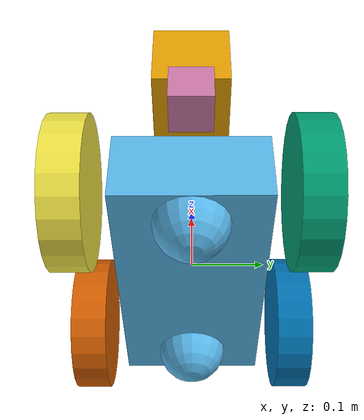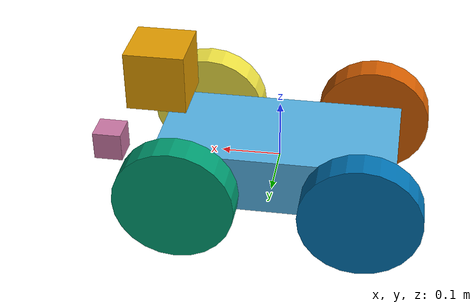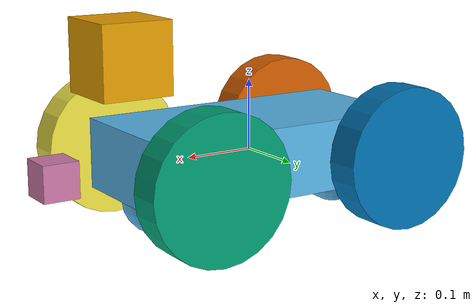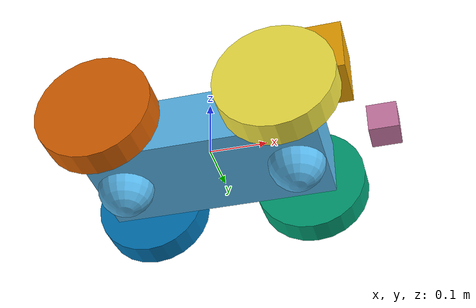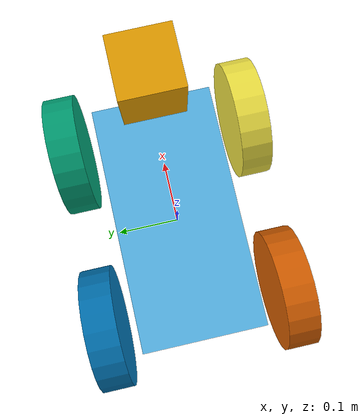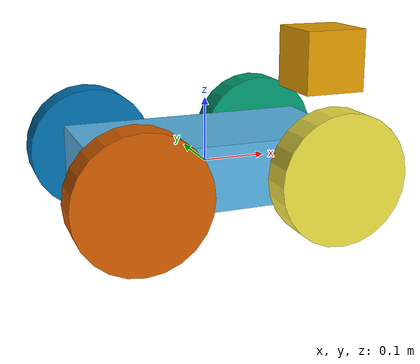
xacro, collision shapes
<?xml version='1.0'?>
<robot name="slam_bot_four_wheel"
  xmlns:xacro="http://www.ros.org/wiki/xacro">
  <xacro:include filename="$(find slam_project)/urdf/slam_bot.gazebo" />
  <link name="robot_footprint"></link>
  <joint name="robot_footprint_joint" type="fixed">
    <origin xyz="0 0 0" rpy="0 0 0" />
    <parent link="robot_footprint"/>
    <child link="chassis" />
  </joint>
  <link name='chassis'>
    <pose>0 0 0.1 0 0 0</pose>
    <inertial>
      <mass value="50.0"/>
      <origin xyz="0.0 0 0" rpy=" 0 0 0"/>
      <inertia ixx="0.1" ixy="0" ixz="0" iyy="0.1" iyz="0" izz="0.1" />
    </inertial>
    <collision name='collision'>
      <origin xyz="0 0 0" rpy=" 0 0 0"/>
      <geometry>
        <box size=".4 .2 .1"/>
      </geometry>
    </collision>
    <visual name='chassis_visual'>
      <origin xyz="0 0 0" rpy=" 0 0 0"/>
      <geometry>
        <box size=".4 .2 .1"/>
      </geometry>
    </visual>
    <collision name='back_caster_collision'>
      <origin xyz="-0.15 0 -0.05" rpy=" 0 0 0"/>
      <geometry>
        <sphere radius="0.049"/>
      </geometry>
      <surface>
        <friction>
          <ode>
            <mu>0.1</mu>
            <mu2>0.1</mu2>
            <slip1>0.</slip1>
            <slip2>0.</slip2>
          </ode>
        </friction>
      </surface>
    </collision>
    <visual name='back_caster_visual'>
      <origin xyz="-0.15 0 -0.05" rpy=" 0 0 0"/>
      <geometry>
        <sphere radius="0.05"/>
      </geometry>
    </visual>
    <collision name='front_caster_collision'>
      <origin xyz="0.15 0 -0.05" rpy=" 0 0 0"/>
      <geometry>
        <sphere radius="0.049"/>
      </geometry>
      <surface>
        <friction>
          <ode>
            <mu>0.1</mu>
            <mu2>0.1</mu2>
            <slip1>0.0</slip1>
            <slip2>0.0</slip2>

          </ode>
        </friction>
      </surface>
    </collision>
    <visual name='front_caster_visual'>
      <origin xyz="0.15 0.0 -0.05" rpy=" 0 0 0"/>
      <geometry>
        <sphere radius="0.05"/>
      </geometry>
    </visual>
  </link>
  <link name="front_left_wheel">
    <inertial>
      <origin xyz="0.0 0.0 0.0" rpy="0.0 1.5707 1.5707" />
      <mass value="5.0"/>
      <inertia ixx="0.1" ixy="0" ixz="0" iyy="0.1" iyz="0" izz="0.1" />
    </inertial>
    <collision name='collision'>
      <origin xyz="0.0 0.0 0.0" rpy=" 0 1.5707 1.5707"/>
      <geometry>
        <cylinder radius="0.1" length="0.05"/>
      </geometry>
    </collision>
    <visual name="lef_wheel_visual">
      <origin xyz="0.0 0.0 0.0" rpy="0 1.5707 1.5707" />
      <geometry>
        <cylinder radius="0.1" length="0.05"/>
      </geometry>
    </visual>
  </link>
  <joint type="continuous" name="front_left_wheel_hinge">
    <origin xyz="0.15 0.15 0.0" rpy="0 0 0"/>
    <child link="front_left_wheel"/>
    <parent link="chassis"/>
    <axis xyz="0 1 0" rpy="0 0 0"/>
    <limit effort="10000" velocity="1000"/>
    <!-- increased damping to reduce the osscilations when robot stops getting acceleration -->
    <joint_properties damping="10.0" friction="1.0"/>
  </joint>
  <link name="front_right_wheel">
    <inertial>
      <origin xyz="0.0 0.0 0.0" rpy="0.0 1.5707 1.5707" />
      <mass value="5.0"/>
      <inertia ixx="0.1" ixy="0" ixz="0" iyy="0.1" iyz="0" izz="0.1" />
    </inertial>
    <collision name='collision'>
      <origin xyz="0.0 0.0 0.0" rpy=" 0 1.5707 1.5707"/>
      <geometry>
        <cylinder radius="0.1" length="0.05"/>
      </geometry>
    </collision>
    <visual name="right_wheel_visual">
      <origin xyz="0.0 0.0 0.0" rpy="0 1.5707 1.5707" />
      <geometry>
        <cylinder radius="0.1" length="0.05"/>
      </geometry>
    </visual>
  </link>
  <joint type="continuous" name="front_right_wheel_hinge">
    <origin xyz="0.15 -0.15 0.0" rpy="0 0 0"/>
    <child link="front_right_wheel"/>
    <parent link="chassis"/>
    <axis xyz="0 1 0" rpy="0 0 0"/>
    <limit effort="10000" velocity="1000"/>
    <!-- increased damping to reduce the osscilations when robot stops getting acceleration -->
    <joint_properties damping="10.0" friction="1.0"/>
  </joint>

  <link name="back_left_wheel">
    <inertial>
      <origin xyz="0.0 0.0 0.0" rpy="0.0 1.5707 1.5707" />
      <mass value="5.0"/>
      <inertia ixx="0.1" ixy="0" ixz="0" iyy="0.1" iyz="0" izz="0.1" />
    </inertial>
    <collision name='collision'>
      <origin xyz="0.0 0.0 0.0" rpy=" 0 1.5707 1.5707"/>
      <geometry>
        <cylinder radius="0.1" length="0.05"/>
      </geometry>
    </collision>
    <visual name="lef_wheel_visual">
      <origin xyz="0.0 0.0 0.0" rpy="0 1.5707 1.5707" />
      <geometry>
        <cylinder radius="0.1" length="0.05"/>
      </geometry>
    </visual>
  </link>
  <joint type="continuous" name="back_left_wheel_hinge">
    <origin xyz="-0.15 0.15 0.0" rpy="0 0 0"/>
    <child link="back_left_wheel"/>
    <parent link="chassis"/>
    <axis xyz="0 1 0" rpy="0 0 0"/>
    <limit effort="10000" velocity="1000"/>
    <!-- increased damping to reduce the osscilations when robot stops getting acceleration -->
    <joint_properties damping="10.0" friction="1.0"/>
  </joint>
  <link name="back_right_wheel">
    <inertial>
      <origin xyz="0.0 0.0 0.0" rpy="0.0 1.5707 1.5707" />
      <mass value="5.0"/>
      <inertia ixx="0.1" ixy="0" ixz="0" iyy="0.1" iyz="0" izz="0.1" />
    </inertial>
    <collision name='collision'>
      <origin xyz="0.0 0.0 0.0" rpy=" 0 1.5707 1.5707"/>
      <geometry>
        <cylinder radius="0.1" length="0.05"/>
      </geometry>
    </collision>
    <visual name="right_wheel_visual">
      <origin xyz="0.0 0.0 0.0" rpy="0 1.5707 1.5707" />
      <geometry>
        <cylinder radius="0.1" length="0.05"/>
      </geometry>
    </visual>
  </link>
  <joint type="continuous" name="back_right_wheel_hinge">
    <origin xyz="-0.15 -0.15 0.0" rpy="0 0 0"/>
    <child link="back_right_wheel"/>
    <parent link="chassis"/>
    <axis xyz="0 1 0" rpy="0 0 0"/>
    <limit effort="10000" velocity="1000"/>
    <!-- increased damping to reduce the osscilations when robot stops getting acceleration -->
    <joint_properties damping="10.0" friction="1.0"/>
  </joint>

<!--Camera-->
  <link name="camera">
    <origin>0 0 0 0 0 0</origin>
    <inertial>
      <origin xyz="0 0 0" rpy="3.14 0 0"/>
      <mass value ="0.1"/>
      <inertia ixx="1e-6" ixy="0" ixz="0" iyy="1e-6" iyz="0" izz="1e-6"/>
    </inertial>
    <collision name="collision">
      <origin xyz="0 0 0" rpy="3.14 0 0"/>
      <geometry>
        <box size="0.05 0.05 0.05" />
      </geometry>
    </collision>
    <visual>
      <geometry>
        <mesh filename="package://slam_project/meshes/kinect/meshes/kinect.dae" />
      </geometry>
    </visual>
  </link>

  <joint type="fixed" name="camera_joint">
    <origin xyz="0.3 0 0" rpy="0 0 0" />
    <child link="camera" />
    <parent link="chassis" />
  </joint>

  <joint name="camera_optical_joint" type="fixed">
    <!-- these values have to be these values otherwise the gazebo camera
        image won't be aligned properly with the frame it is supposedly
        originating from -->
    <origin xyz="0 0 0" rpy="${-pi/2} 0 ${-pi/2}"/>
    <parent link="camera"/>
    <child link="camera_optical_link"/>
  </joint>

  <link name="camera_optical_link">
    </link>

<!--LIDAR-->
  <link name="hokuyo">
      <origin>0. 0 0 0 0 0</origin>
      <inertial>
        <origin xyz="0 0 0" rpy="0 0 0"/>
        <mass value ="0.1"/>
        <inertia ixx="1e-6" ixy="0" ixz="0" iyy="1e-6" iyz="0" izz="1e-6"/>
      </inertial>
      <collision name="collision">
        <origin xyz="0 0 0" rpy="0 0 0"/>
        <geometry>
          <box size="0.1 0.1 0.1" />
        </geometry>
      </collision>
      <visual>
        <geometry>
          <mesh filename="package://slam_project/meshes/hokuyo.dae" />
        </geometry>
      </visual>
  </link>
  <joint type="fixed" name="hokuyo_joint">
    <origin xyz="0.2 0 0.15" rpy="0 0 0"/>
    <child link="hokuyo" />
    <parent link="chassis" />
  </joint>

</robot>
